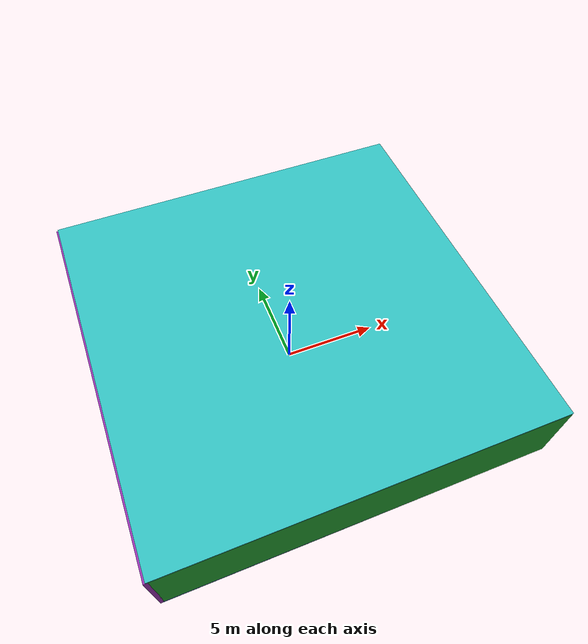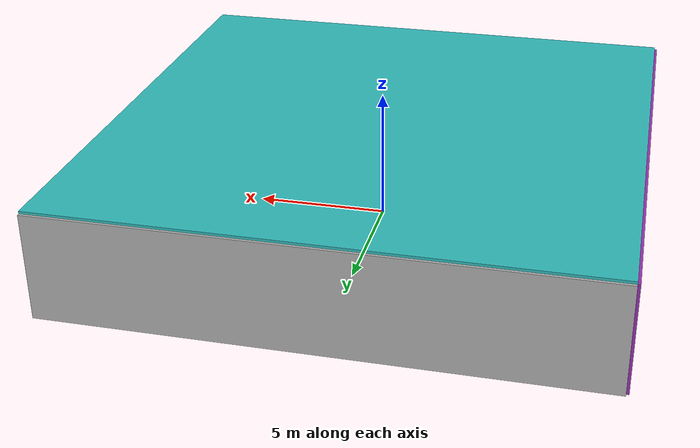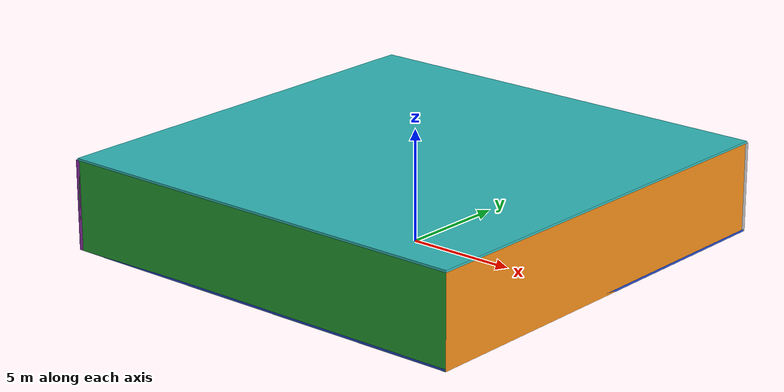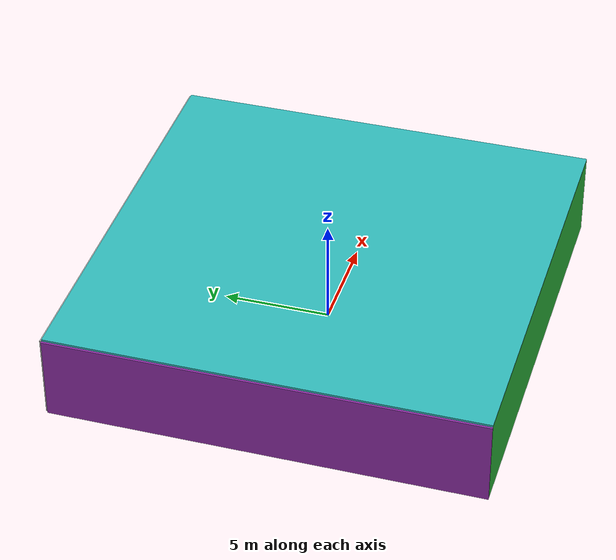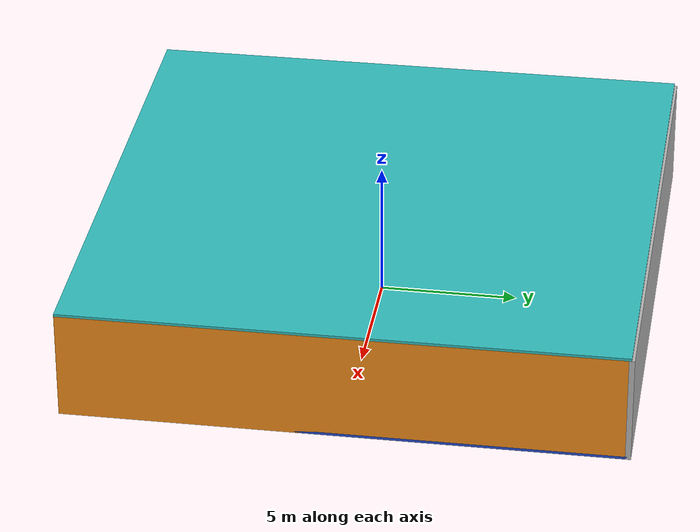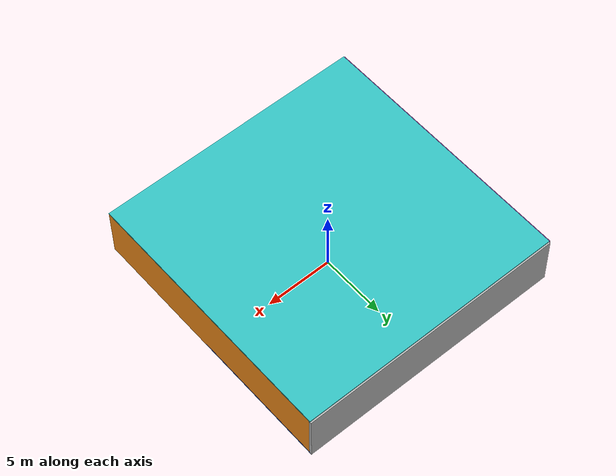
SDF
<sdf version="1.4">
 <world name="default">
  <physics type="ode">
   <max_step_size>0.001</max_step_size>
   <real_time_factor>1</real_time_factor>
   <real_time_update_rate>1000</real_time_update_rate>
   <gravity>0 0 -9.8</gravity>
  </physics>
  <scene><ambient>0.4 0.4 0.4 1</ambient><background>0.7 0.7 0.7 1</background><shadows>1</shadows></scene>
  <model name="Surrounding">
   <static>1</static>
   <link name="Ceiling">
    <collision name="Ceiling_Collision"><geometry><box><size>20 20 0.1</size></box></geometry></collision>
    <visual name="Ceiling_Visual">
     <geometry><box><size>20 20 0.1</size></box></geometry>
     <material>
      <script>
       <uri>file://media/materials/scripts/gazebo.material</uri>
       <name>Gazebo/TurquoiseGlowOutline</name>
      </script>
     </material>
    </visual>
    <pose>0 0 4.05 0 0 0</pose>
   </link>
   <link name="Wall_South">
    <collision name="Wall_South_Collision">
     <geometry><box><size>20 0 4</size></box></geometry>
     <pose>0 0 2 0 -0 0</pose>
    </collision>
    <visual name="Wall_South_Visual">
     <pose>0 0 2 0 -0 0</pose>
     <geometry><box><size>20 0 4</size></box></geometry>
     <material>
      <script><uri>file://media/materials/scripts/gazebo.material</uri><name>Gazebo/Green</name></script>
     </material>
    </visual>
    <velocity_decay><linear>0</linear><angular>0</angular></velocity_decay>
    <pose>0 -10 0 0 -0 0</pose>
   </link>
   <link name="Wall_East">
    <collision name="Wall_21_Collision">
     <geometry><box><size>20 0 4</size></box></geometry>
     <pose>0 0 2 0 -0 0</pose>
    </collision>
    <visual name="Wall_21_Visual">
     <pose>0 0 2 0 -0 0</pose>
     <geometry><box><size>20 0 4</size></box></geometry>
     <material>
      <script><uri>file://media/materials/scripts/gazebo.material</uri><name>Gazebo/Orange</name></script>
     </material>
    </visual>
    <velocity_decay><linear>0</linear><angular>0</angular></velocity_decay>
    <pose>10 0 0 0 -0 1.5708</pose>
   </link>
   <link name="Wall_North">
    <collision name="Wall_22_Collision">
     <geometry><box><size>20 0.2 4</size></box></geometry>
     <pose>0 0 2 0 -0 0</pose>
    </collision>
    <visual name="Wall_22_Visual">
     <pose>0 0 2 0 -0 0</pose>
     <geometry><box><size>20 0.2 4</size></box></geometry>
     <material>
      <script><uri>file://media/materials/scripts/gazebo.material</uri><name>Gazebo/CloudySky</name></script>
     </material>
    </visual>
    <velocity_decay><linear>0</linear><angular>0</angular></velocity_decay>
    <pose>0 10 0 0 -0 0</pose>
   </link>
   <link name="Wall_West">
    <collision name="Wall_23_Collision">
     <geometry><box><size>20 0.2 4</size></box></geometry>
     <pose>0 0 2 0 -0 0</pose>
    </collision>
    <visual name="Wall_23_Visual">
     <pose>0 0 2 0 -0 0</pose>
     <geometry><box><size>20 0.2 4</size></box></geometry>
     <material>
      <script><uri>file://media/materials/scripts/gazebo.material</uri><name>Gazebo/Purple</name></script>
     </material>
    </visual>
    <velocity_decay><linear>0</linear><angular>0</angular></velocity_decay>
    <pose>-10 0 0 0 0 -1.5708</pose>
   </link>
   <link name="Ground_link">
    <collision name="collision">
     <pose>0 0 .05 0 -0 0</pose>
     <geometry><box><size>20 20 0.1</size></box></geometry>
    </collision>
    <visual name="visual">
     <pose>0 0 .05 0 -0 0</pose>
     <geometry><box><size>20 20 0.1</size></box></geometry>
     <material>
      <script><uri>file://media/materials/scripts/gazebo.material</uri><name>Gazebo/BlueLaser</name></script>
     </material>
    </visual>
   </link>
   <static>1</static>
  </model>
  <spherical_coordinates>
   <surface_model>EARTH_WGS84</surface_model>
   <latitude_deg>0</latitude_deg>
   <longitude_deg>0</longitude_deg>
   <elevation>0</elevation>
   <heading_deg>0</heading_deg>
  </spherical_coordinates>
  <light name="lightball_0" type="diffuse">
   <diffuse>0.8 0.8 0.8 1</diffuse>
   <specular>0.2 0.2 0.2 1</specular>
   <attenuation>
    <range>100</range>
    <constant>0.7</constant>
    <linear>0.01</linear>
    <quadratic>0.001</quadratic>
   </attenuation>
   <direction>-0.5 0.1 -0.9</direction>
   <pose>-8.32449424537 -7.3552297276 1.91399255224 0 0 0</pose>
  </light>
  <light name="lightball_1" type="diffuse">
   <diffuse>0.8 0.8 0.8 1</diffuse>
   <specular>0.2 0.2 0.2 1</specular>
   <attenuation>
    <range>100</range>
    <constant>0.7</constant>
    <linear>0.01</linear>
    <quadratic>0.001</quadratic>
   </attenuation>
   <direction>-0.5 0.1 -0.9</direction>
   <pose>-1.97478643141 -5.1953398616 3.64231765273 0 0 0</pose>
  </light>
  <light name="lightball_2" type="diffuse">
   <diffuse>0.8 0.8 0.8 1</diffuse>
   <specular>0.2 0.2 0.2 1</specular>
   <attenuation>
    <range>100</range>
    <constant>0.7</constant>
    <linear>0.01</linear>
    <quadratic>0.001</quadratic>
   </attenuation>
   <direction>-0.5 0.1 -0.9</direction>
   <pose>-5.31175313123 -0.996079532347 1.2016418661 0 0 0</pose>
  </light>
  <light name="lightball_3" type="diffuse">
   <diffuse>0.8 0.8 0.8 1</diffuse>
   <specular>0.2 0.2 0.2 1</specular>
   <attenuation>
    <range>100</range>
    <constant>0.7</constant>
    <linear>0.01</linear>
    <quadratic>0.001</quadratic>
   </attenuation>
   <direction>-0.5 0.1 -0.9</direction>
   <pose>8.23070518365 6.51379653176 1.5786742388 0 0 0</pose>
  </light>
  <light name="lightball_4" type="diffuse">
   <diffuse>0.8 0.8 0.8 1</diffuse>
   <specular>0.2 0.2 0.2 1</specular>
   <attenuation>
    <range>100</range>
    <constant>0.7</constant>
    <linear>0.01</linear>
    <quadratic>0.001</quadratic>
   </attenuation>
   <direction>-0.5 0.1 -0.9</direction>
   <pose>-6.74730158239 -1.72907159751 0.799087022358 0 0 0</pose>
  </light>
  <light name="lightball_5" type="diffuse">
   <diffuse>0.8 0.8 0.8 1</diffuse>
   <specular>0.2 0.2 0.2 1</specular>
   <attenuation>
    <range>100</range>
    <constant>0.7</constant>
    <linear>0.01</linear>
    <quadratic>0.001</quadratic>
   </attenuation>
   <direction>-0.5 0.1 -0.9</direction>
   <pose>-8.71588469377 -2.63829742703 2.15036192716 0 0 0</pose>
  </light>
  <light name="lightball_6" type="diffuse">
   <diffuse>0.8 0.8 0.8 1</diffuse>
   <specular>0.2 0.2 0.2 1</specular>
   <attenuation>
    <range>100</range>
    <constant>0.7</constant>
    <linear>0.01</linear>
    <quadratic>0.001</quadratic>
   </attenuation>
   <direction>-0.5 0.1 -0.9</direction>
   <pose>-2.93951930572 -6.54222269021 2.67390515615 0 0 0</pose>
  </light>
  <light name="lightball_7" type="diffuse">
   <diffuse>0.8 0.8 0.8 1</diffuse>
   <specular>0.2 0.2 0.2 1</specular>
   <attenuation>
    <range>100</range>
    <constant>0.7</constant>
    <linear>0.01</linear>
    <quadratic>0.001</quadratic>
   </attenuation>
   <direction>-0.5 0.1 -0.9</direction>
   <pose>0.496290991569 -1.03425651837 1.54905947196 0 0 0</pose>
  </light>
  <include><uri>model://cabinet</uri><pose>-6.87386832002 6.96020161034 0 0 0 0.942399990909</pose></include>
  <include><uri>model://table</uri><pose>-4.14368000765 -2.25877030166 0 0 0 2.54720621213</pose></include>
  <include>
   <uri>model://robocup_3Dsim_goal</uri>
   <pose>-3.71470737901 4.60355292433 0 0 0 2.43170118149</pose>
  </include>
  <include>
   <uri>model://textured_shapes</uri>
   <pose>7.42119688326 -4.75765969902 0 0 0 0.660634967839</pose>
  </include>
 </world>
</sdf>

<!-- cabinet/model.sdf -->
<sdf version="1.5">
  <model name="cabinet">
    <static>true</static>
    <link name="cabinet_bottom_plate">
      <inertial>
        <pose>0 0 -1 0 0 0</pose>
        <inertia>
          <ixx>2.050000</ixx>
          <ixy>0</ixy>
          <ixz>0</ixz>
          <iyy>2.050000</iyy>
          <iyz>0</iyz>
          <izz>2.050000</izz>
        </inertia>
        <mass>25.000000</mass>
      </inertial>
      <collision name="cabinet_bottom_plate_geom">
        <pose>0 0 0.010000 0 0 0</pose>
        <geometry>
          <box>
            <size>0.450000 0.450000 0.020000</size>
          </box>
        </geometry>
      </collision>
      <visual name="cabinet_bottom_plate_geom_visual">
        <pose>0 0 0.010000 0 0 0</pose>
        <geometry>
          <box>
            <size>0.450000 0.450000 0.020000</size>
          </box>
        </geometry>
        <material>
          <script>
            <uri>model://media/materials/scripts/gazebo.material</uri>
            <name>Gazebo/Wood</name>
          </script>
        </material>
      </visual>
      <collision name="cabinet_bottom_plate_geom_cabinet_back_plate">
        <pose>0.235000 0 0.510000 0 0 0</pose>
        <geometry>
          <box>
            <size>0.020000 0.450000 1.020000</size>
          </box>
        </geometry>
      </collision>
      <visual name="cabinet_bottom_plate_geom_cabinet_back_plate_visual">
        <pose>0.235000 0 0.510000 0 0 0</pose>
        <geometry>
          <box>
            <size>0.020000 0.450000 1.020000</size>
          </box>
        </geometry>
        <material>
          <script>
            <uri>model://media/materials/scripts/gazebo.material</uri>
            <name>Gazebo/Wood</name>
          </script>
        </material>
      </visual>
      <collision name="cabinet_bottom_plate_geom_cabinet_left_plate">
        <pose>0 0.235000 0.510000 0 0 0</pose>
        <geometry>
          <box>
            <size>0.450000 0.020000 1.020000</size>
          </box>
        </geometry>
      </collision>
      <visual name="cabinet_bottom_plate_geom_cabinet_left_plate_visual">
        <pose>0 0.235000 0.510000 0 0 0</pose>
        <geometry>
          <box>
            <size>0.450000 0.020000 1.020000</size>
          </box>
        </geometry>
        <material>
          <script>
            <uri>model://media/materials/scripts/gazebo.material</uri>
            <name>Gazebo/Wood</name>
          </script>
        </material>
      </visual>
      <collision name="cabinet_bottom_plate_geom_cabinet_middle_plate">
        <pose>0 0 0.510000 0 0 0</pose>
        <geometry>
          <box>
            <size>0.450000 0.450000 0.020000</size>
          </box>
        </geometry>
      </collision>
      <visual name="cabinet_bottom_plate_geom_cabinet_middle_plate_visual">
        <pose>0 0 0.510000 0 0 0</pose>
        <geometry>
          <box>
            <size>0.450000 0.450000 0.020000</size>
          </box>
        </geometry>
        <material>
          <script>
            <uri>model://media/materials/scripts/gazebo.material</uri>
            <name>Gazebo/Wood</name>
          </script>
        </material>
      </visual>
      <collision name="cabinet_bottom_plate_geom_cabinet_right_plate">
        <pose>0 -0.235000 0.510000 0 0 0</pose>
        <geometry>
          <box>
            <size>0.450000 0.020000 1.020000</size>
          </box>
        </geometry>
      </collision>
      <visual name="cabinet_bottom_plate_geom_cabinet_right_plate_visual">
        <pose>0 -0.235000 0.510000 0 0 0</pose>
        <geometry>
          <box>
            <size>0.450000 0.020000 1.020000</size>
          </box>
        </geometry>
        <material>
          <script>
            <uri>model://media/materials/scripts/gazebo.material</uri>
            <name>Gazebo/Wood</name>
          </script>
        </material>
      </visual>
      <collision name="cabinet_bottom_plate_geom_cabinet_top_plate">
        <pose>0 0 1.010000 0 0 0</pose>
        <geometry>
          <box>
            <size>0.450000 0.450000 0.020000</size>
          </box>
        </geometry>
      </collision>
      <visual name="cabinet_bottom_plate_geom_cabinet_top_plate_visual">
        <pose>0 0 1.010000 0 0 0</pose>
        <geometry>
          <box>
            <size>0.450000 0.450000 0.020000</size>
          </box>
        </geometry>
        <material>
          <script>
            <uri>model://media/materials/scripts/gazebo.material</uri>
            <name>Gazebo/Wood</name>
          </script>
        </material>
      </visual>
    </link>
  </model>
</sdf>

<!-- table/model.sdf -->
<sdf version="1.5">
  <model name="table">
    <static>true</static>
    <link name="link">
      <collision name="surface">
        <pose>0 0 1.0 0 0 0</pose>
        <geometry>
          <box>
            <size>1.5 0.8 0.03</size>
          </box>
        </geometry>
        <surface>
          <friction>
            <ode>
              <mu>0.6</mu>
              <mu2>0.6</mu2>
            </ode>
          </friction>
        </surface>
      </collision>
      <visual name="visual1">
        <pose>0 0 1.0 0 0 0</pose>
        <geometry>
          <box>
            <size>1.5 0.8 0.03</size>
          </box>
        </geometry>
        <material>
          <script>
            <uri>model://media/materials/scripts/gazebo.material</uri>
            <name>Gazebo/Wood</name>
          </script>
        </material>
      </visual>
      <collision name="front_left_leg">
        <pose>0.68 0.38 0.5 0 0 0</pose>
        <geometry>
          <cylinder>
            <radius>0.02</radius>
            <length>1.0</length>
          </cylinder>
        </geometry>
      </collision>
      <visual name="front_left_leg">
        <pose>0.68 0.38 0.5 0 0 0</pose>
        <geometry>
          <cylinder>
            <radius>0.02</radius>
            <length>1.0</length>
          </cylinder>
        </geometry>
        <material>
          <script>
            <uri>model://media/materials/scripts/gazebo.material</uri>
            <name>Gazebo/Grey</name>
          </script>
        </material>
      </visual>
      <collision name="front_right_leg">
        <pose>0.68 -0.38 0.5 0 0 0</pose>
        <geometry>
          <cylinder>
            <radius>0.02</radius>
            <length>1.0</length>
          </cylinder>
        </geometry>
      </collision>
      <visual name="front_right_leg">
        <pose>0.68 -0.38 0.5 0 0 0</pose>
        <geometry>
          <cylinder>
            <radius>0.02</radius>
            <length>1.0</length>
          </cylinder>
        </geometry>
        <material>
          <script>
            <uri>model://media/materials/scripts/gazebo.material</uri>
            <name>Gazebo/Grey</name>
          </script>
        </material>
      </visual>
      <collision name="back_right_leg">
        <pose>-0.68 -0.38 0.5 0 0 0</pose>
        <geometry>
          <cylinder>
            <radius>0.02</radius>
            <length>1.0</length>
          </cylinder>
        </geometry>
      </collision>
      <visual name="back_right_leg">
        <pose>-0.68 -0.38 0.5 0 0 0</pose>
        <geometry>
          <cylinder>
            <radius>0.02</radius>
            <length>1.0</length>
          </cylinder>
        </geometry>
        <material>
          <script>
            <uri>model://media/materials/scripts/gazebo.material</uri>
            <name>Gazebo/Grey</name>
          </script>
        </material>
      </visual>
      <collision name="back_left_leg">
        <pose>-0.68 0.38 0.5 0 0 0</pose>
        <geometry>
          <cylinder>
            <radius>0.02</radius>
            <length>1.0</length>
          </cylinder>
        </geometry>
      </collision>
      <visual name="back_left_leg">
        <pose>-0.68 0.38 0.5 0 0 0</pose>
        <geometry>
          <cylinder>
            <radius>0.02</radius>
            <length>1.0</length>
          </cylinder>
        </geometry>
        <material>
          <script>
            <uri>model://media/materials/scripts/gazebo.material</uri>
            <name>Gazebo/Grey</name>
          </script>
        </material>
      </visual>
    </link>
  </model>
</sdf>

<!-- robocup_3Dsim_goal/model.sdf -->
<sdf version="1.5">
  <model name="robocup_3d_goal">
    <static>true</static>
    <link name="left_post">
      <pose>0 1.05 0.45 0 0 0</pose>
      <collision name="collision">
        <geometry>
          <cylinder>
            <radius>0.05</radius>
            <length>0.9</length>
          </cylinder>
        </geometry>
      </collision>
      <visual name="visual">
        <geometry>
          <cylinder>
            <radius>0.05</radius>
            <length>0.9</length>
          </cylinder>
        </geometry>
        <material>
          <script>
            <uri>file://media/materials/scripts/gazebo.material</uri>
            <name>Gazebo/ZincYellow</name>
          </script>
        </material>
      </visual>
    </link>
    <link name="left_support_horiz_lower">
      <pose>0.30 1.05 0.01 0 0 0</pose>
      <collision name="collision">
        <geometry>
          <box>
            <size>0.50 0.02 0.02</size>
          </box>
        </geometry>
      </collision>
      <visual name="visual">
        <geometry>
          <box>
            <size>0.50 0.02 0.02</size>
          </box>
        </geometry>
        <material>
          <script>
            <uri>file://media/materials/scripts/gazebo.material</uri>
            <name>Gazebo/White</name>
          </script>
        </material>
      </visual>
    </link>
    <link name="left_support_horiz_upper">
      <pose>0.30 1.05 0.79 0 0 0</pose>
      <collision name="collision">
        <geometry>
          <box>
            <size>0.50 0.02 0.02</size>
          </box>
        </geometry>
      </collision>
      <visual name="visual">
        <geometry>
          <box>
            <size>0.50 0.02 0.02</size>
          </box>
        </geometry>
        <material>
          <script>
            <uri>file://media/materials/scripts/gazebo.material</uri>
            <name>Gazebo/White</name>
          </script>
        </material>
      </visual>
    </link>
    <link name="left_support_vertical">
      <pose>0.56 1.05 0.4 0 1.5708 0</pose>
      <collision name="collision">
        <geometry>
          <box>
            <size>0.80 0.02 0.02</size>
          </box>
        </geometry>
      </collision>
      <visual name="visual">
        <geometry>
          <box>
            <size>0.80 0.02 0.02</size>
          </box>
        </geometry>
        <material>
          <script>
            <uri>file://media/materials/scripts/gazebo.material</uri>
            <name>Gazebo/White</name>
          </script>
        </material>
      </visual>
    </link>
    <link name="right_support_horiz_lower">
      <pose>0.30 -1.05 0.01 0 0 0</pose>
      <collision name="collision">
        <geometry>
          <box>
            <size>0.50 0.02 0.02</size>
          </box>
        </geometry>
      </collision>
      <visual name="visual">
        <geometry>
          <box>
            <size>0.50 0.02 0.02</size>
          </box>
        </geometry>
        <material>
          <script>
            <uri>file://media/materials/scripts/gazebo.material</uri>
            <name>Gazebo/White</name>
          </script>
        </material>
      </visual>
    </link>
    <link name="right_support_horiz_upper">
      <pose>0.30 -1.05 0.79 0 0 0</pose>
      <collision name="collision">
        <geometry>
          <box>
            <size>0.50 0.02 0.02</size>
          </box>
        </geometry>
      </collision>
      <visual name="visual">
        <geometry>
          <box>
            <size>0.50 0.02 0.02</size>
          </box>
        </geometry>
        <material>
          <script>
            <uri>file://media/materials/scripts/gazebo.material</uri>
            <name>Gazebo/White</name>
          </script>
        </material>
      </visual>
    </link>
    <link name="right_support_vertical">
      <pose>0.56 -1.05 0.4 0 1.5708 0</pose>
      <collision name="collision">
        <geometry>
          <box>
            <size>0.80 0.02 0.02</size>
          </box>
        </geometry>
      </collision>
      <visual name="visual">
        <geometry>
          <box>
            <size>0.80 0.02 0.02</size>
          </box>
        </geometry>
        <material>
          <script>
            <uri>file://media/materials/scripts/gazebo.material</uri>
            <name>Gazebo/White</name>
          </script>
        </material>
      </visual>
    </link>
    <link name="center_support_horiz_lower">
      <pose>0.56 0 0.01 0 1.5708 0</pose>
      <collision name="collision">
        <geometry>
          <box>
            <size>0.02 2.08 0.02</size>
          </box>
        </geometry>
      </collision>
      <visual name="visual">
        <geometry>
          <box>
            <size>0.02 2.08 0.02</size>
          </box>
        </geometry>
        <material>
          <script>
            <uri>file://media/materials/scripts/gazebo.material</uri>
            <name>Gazebo/White</name>
          </script>
        </material>
      </visual>
    </link>
    <link name="center_support_horiz_upper">
      <pose>0.56 0 0.79 0 1.5708 0</pose>
      <collision name="collision">
        <geometry>
          <box>
            <size>0.02 2.08 0.02</size>
          </box>
        </geometry>
      </collision>
      <visual name="visual">
        <geometry>
          <box>
            <size>0.02 2.08 0.02</size>
          </box>
        </geometry>
        <material>
          <script>
            <uri>file://media/materials/scripts/gazebo.material</uri>
            <name>Gazebo/White</name>
          </script>
        </material>
      </visual>
    </link>
    <link name="right_post">
      <pose>0 -1.05 0.45 0 0 0</pose>
      <collision name="collision">
        <geometry>
          <cylinder>
            <radius>0.05</radius>
            <length>0.9</length>
          </cylinder>
        </geometry>
      </collision>
      <visual name="visual">
        <geometry>
          <cylinder>
            <radius>0.05</radius>
            <length>0.9</length>
          </cylinder>
        </geometry>
        <material>
          <script>
            <uri>file://media/materials/scripts/gazebo.material</uri>
            <name>Gazebo/ZincYellow</name>
          </script>
        </material>
      </visual>
    </link>
    <link name="crossbar">
      <pose>0 0 0.85 1.57 1.57 0</pose>
      <collision name="collision">
        <geometry>
          <cylinder>
            <radius>0.05</radius>
            <length>2.0</length>
          </cylinder>
        </geometry>
      </collision>
      <visual name="visual">
        <geometry>
          <cylinder>
            <radius>0.05</radius>
            <length>2.0</length>
          </cylinder>
        </geometry>
        <material>
          <script>
            <uri>file://media/materials/scripts/gazebo.material</uri>
            <name>Gazebo/ZincYellow</name>
          </script>
        </material>
      </visual>
    </link>
    <link name="center_net">
      <pose>0.56 0 0.40 0 0 0</pose>
      <collision name="collision">
        <geometry>
          <box>
            <size>0.01 2.1 0.80</size>
          </box>
        </geometry>
      </collision>
      <visual name="visual">
        <geometry>
          <box>
            <size>0.01 2.1 0.80</size>
          </box>
        </geometry>
        <material>
          <script>
            <uri>model://../model_source/models/robocup09_spl_field/materials/scripts/</uri>
            <uri>model://../model_source/models/robocup09_spl_field/materials/textures/</uri>
            <name>RoboCup/Net</name>
          </script>
        </material>
      </visual>
    </link>
    <link name="left_net">
      <pose>0.30 1.05 0.40 0 0 0</pose>
      <collision name="collision">
        <geometry>
          <box>
            <size>0.50 0.01 0.76</size>
          </box>
        </geometry>
      </collision>
      <visual name="visual">
        <geometry>
          <box>
            <size>0.50 0.01 0.76</size>
          </box>
        </geometry>
        <material>
          <script>
            <uri>model://../model_source/models/robocup09_spl_field/materials/scripts/</uri>
            <uri>model://../model_source/models/robocup09_spl_field/materials/textures/</uri>
            <name>RoboCup/Net</name>
          </script>
        </material>
      </visual>
    </link>
    <link name="right_net">
      <pose>0.30 -1.05 0.40 0 0 0</pose>
      <collision name="collision">
        <geometry>
          <box>
            <size>0.50 0.01 0.76</size>
          </box>
        </geometry>
      </collision>
      <visual name="visual">
        <geometry>
          <box>
            <size>0.50 0.01 0.76</size>
          </box>
        </geometry>
        <material>
          <script>
            <uri>model://../model_source/models/robocup09_spl_field/materials/scripts/</uri>
            <uri>model://../model_source/models/robocup09_spl_field/materials/textures/</uri>
            <name>RoboCup/Net</name>
          </script>
        </material>
      </visual>
    </link>
  </model>
</sdf>

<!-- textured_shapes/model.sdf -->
<sdf version="1.6">
  <model name="textured_shapes">
    <pose>0 0 0.5 0 0 0</pose>
    <link name="box">
      <pose>0 -1.5 0 0 0 0</pose>
      <collision name="collision">
        <geometry>
          <box>
            <size>1 1 1</size>
          </box>
        </geometry>
      </collision>
      <visual name="visual">
        <geometry>
          <box>
            <size>1 1 1</size>
          </box>
        </geometry>
        <material>
          <script>
            <uri>model://../model_source/models/textured_shapes/materials/scripts</uri>
            <uri>model://../model_source/models/textured_shapes/materials/textures</uri>
            <name>TexturedShape/Squares</name>
          </script>
        </material>
      </visual>
    </link>
    <link name="sphere">
      <collision name="collision">
        <geometry>
          <sphere>
            <radius>0.5</radius>
          </sphere>
        </geometry>
      </collision>
      <visual name="visual">
        <geometry>
          <sphere>
            <radius>0.5</radius>
          </sphere>
        </geometry>
        <material>
          <script>
            <uri>model://../model_source/models/textured_shapes/materials/scripts</uri>
            <uri>model://../model_source/models/textured_shapes/materials/textures</uri>
            <name>TexturedShape/Squares</name>
          </script>
        </material>
      </visual>
    </link>
    <link name="cylinder">
      <pose>0 1.5 0 0 0 0</pose>
      <collision name="collision">
        <geometry>
          <cylinder>
            <radius>0.5</radius>
            <length>1</length>
          </cylinder>
        </geometry>
      </collision>
      <visual name="visual">
        <geometry>
          <cylinder>
            <radius>0.5</radius>
            <length>1</length>
          </cylinder>
        </geometry>
        <material>
          <script>
            <uri>model://../model_source/models/textured_shapes/materials/scripts</uri>
            <uri>model://../model_source/models/textured_shapes/materials/textures</uri>
            <name>TexturedShape/Squares</name>
          </script>
        </material>
      </visual>
    </link>
  </model>
</sdf>
